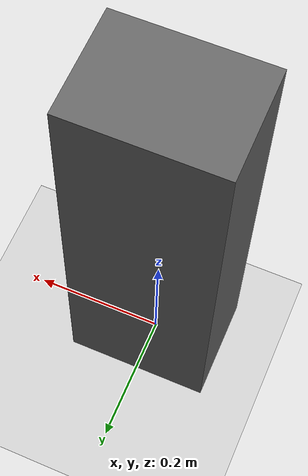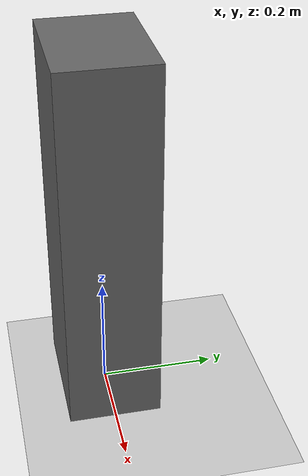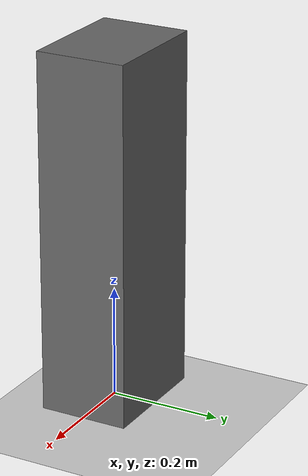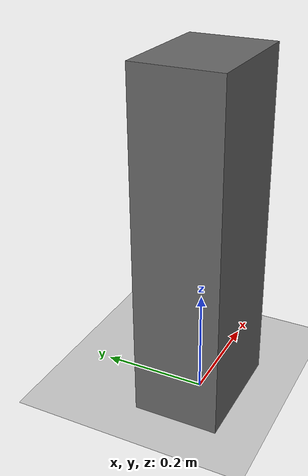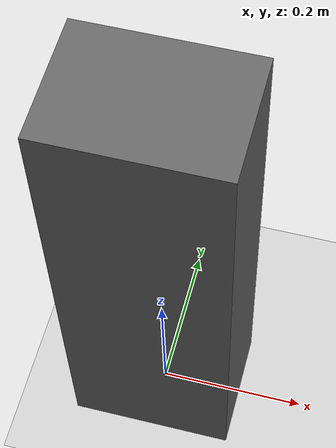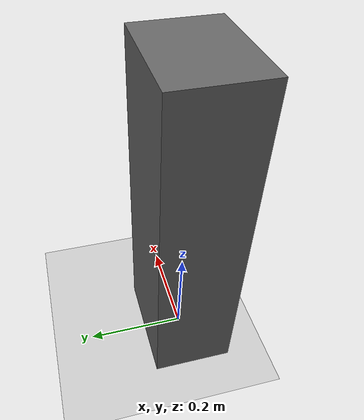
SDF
<?xml version="1.0"?>
<sdf version="1.8">
  <world name="cooperative_transport">
    <gravity>0 0 -9.81</gravity>
    <physics name="2ms" type="ignored">
      <max_step_size>0.002</max_step_size>
      <real_time_factor>1.0</real_time_factor>
      <real_time_update_rate>500</real_time_update_rate>
    </physics>

    <plugin filename="ignition-gazebo-physics-system" name="ignition::gazebo::systems::Physics"/>
    <plugin filename="ignition-gazebo-user-commands-system" name="ignition::gazebo::systems::UserCommands"/>
    <plugin filename="ignition-gazebo-scene-broadcaster-system" name="ignition::gazebo::systems::SceneBroadcaster"/>
    <plugin filename="ignition-gazebo-contact-system" name="ignition::gazebo::systems::Contact"/>
    <plugin filename="ignition-gazebo-sensors-system" name="ignition::gazebo::systems::Sensors">
      <render_engine>ogre2</render_engine>
    </plugin>

    <light type="directional" name="sun">
      <cast_shadows>true</cast_shadows><pose>0 0 10 0 0 0</pose>
      <diffuse>0.8 0.8 0.8 1</diffuse><specular>0.2 0.2 0.2 1</specular>
      <direction>-0.5 0.1 -0.9</direction>
    </light>

    <model name="ground_plane">
      <static>true</static>
      <link name="link">
        <collision name="collision">
          <geometry><plane><normal>0 0 1</normal><size>20 20</size></plane></geometry>
          <surface><friction><ode><mu>1.0</mu><mu2>1.0</mu2></ode></friction></surface>
        </collision>
        <visual name="visual"><geometry><plane><normal>0 0 1</normal><size>20 20</size></plane></geometry></visual>
      </link>
    </model>

    <model name="grasp_support">
      <static>true</static>
      <!-- Top surface z=0.645 m. This centres the 30 mm-thick payload at
           z=0.660 m between the safely opened AMIR fingers. -->
      <pose>0 0 0.3225 0 0 0</pose>
      <link name="link">
        <collision name="collision">
          <geometry><box><size>0.22 0.16 0.645</size></box></geometry>
          <surface><friction><ode><mu>0.8</mu><mu2>0.8</mu2></ode></friction></surface>
        </collision>
        <visual name="visual">
          <geometry><box><size>0.22 0.16 0.645</size></box></geometry>
          <material>
            <ambient>0.3 0.3 0.3 1</ambient>
            <diffuse>0.4 0.4 0.4 1</diffuse>
          </material>
        </visual>
      </link>
    </model>

  </world>
</sdf>
